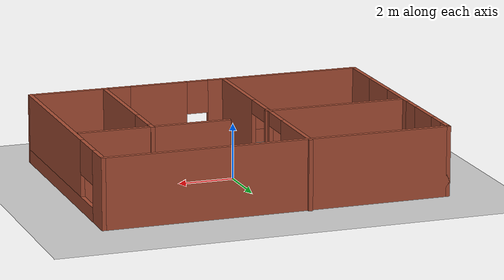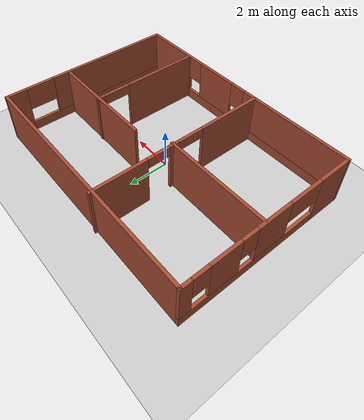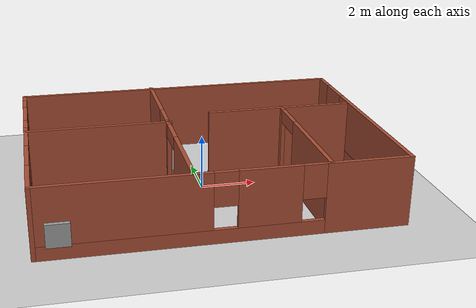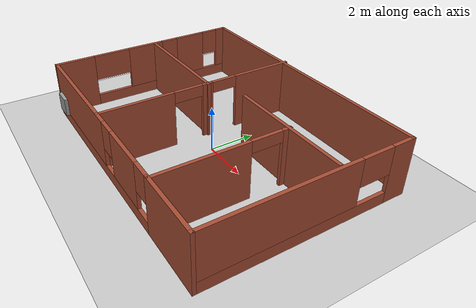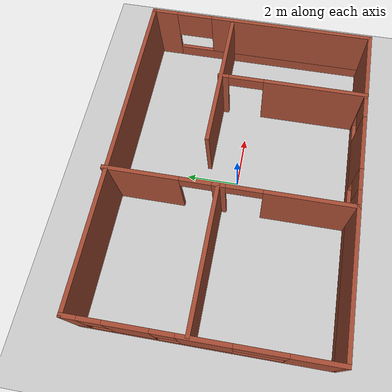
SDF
<sdf version="1.7">
 <world name="default">
  <light name="sun" type="directional">
   <pose>0 0 10 0 -0 0</pose>
   <diffuse>0.8 0.8 0.8 1</diffuse>
   <specular>0.2 0.2 0.2 1</specular>
   <attenuation>
    <range>1000</range>
    <constant>0.9</constant>
    <linear>0.01</linear>
    <quadratic>0.001</quadratic>
   </attenuation>
   <direction>-0.5 0.1 -0.9</direction>
   <spot><inner_angle>0</inner_angle><outer_angle>0</outer_angle><falloff>0</falloff></spot>
  </light>
  <model name="ground_plane">
   <static>1</static>
   <link name="link">
    <collision name="collision">
     <geometry><plane><normal>0 0 1</normal><size>100 100</size></plane></geometry>
     <surface>
      <contact><collide_bitmask>65535</collide_bitmask></contact>
      <friction><ode><mu>100</mu><mu2>50</mu2></ode></friction>
     </surface>
    </collision>
    <visual name="visual">
     <cast_shadows>0</cast_shadows>
     <geometry><plane><normal>0 0 1</normal><size>100 100</size></plane></geometry>
     <material>
      <script><uri>file://media/materials/scripts/gazebo.material</uri><name>Gazebo/Grey</name></script>
     </material>
    </visual>
   </link>
  </model>
  <gravity>0 0 -9.8</gravity>
  <magnetic_field>6e-06 2.3e-05 -4.2e-05</magnetic_field>
  <atmosphere type="adiabatic"/>
  <physics type="ode">
   <max_step_size>0.001</max_step_size>
   <real_time_factor>1</real_time_factor>
   <real_time_update_rate>1000</real_time_update_rate>
  </physics>
  <scene><ambient>0.4 0.4 0.4 1</ambient><background>0.7 0.7 0.7 1</background><shadows>1</shadows></scene>
  <spherical_coordinates>
   <surface_model>EARTH_WGS84</surface_model>
   <latitude_deg>0</latitude_deg>
   <longitude_deg>0</longitude_deg>
   <elevation>0</elevation>
   <heading_deg>0</heading_deg>
  </spherical_coordinates>
  <model name="map3">
   <pose>-0.06864 0.109458 0 0 -0 0</pose>
   <link name="Wall_0">
    <collision name="Wall_0_Collision">
     <geometry><box><size>12.5 0.15 2.5</size></box></geometry>
     <pose>0 0 1.25 0 -0 0</pose>
    </collision>
    <visual name="Wall_0_Visual">
     <pose>0 0 1.25 0 -0 0</pose>
     <geometry><box><size>12.5 0.15 2.5</size></box></geometry>
     <material>
      <script><uri>file://media/materials/scripts/gazebo.material</uri><name>Gazebo/Bricks</name></script>
      <ambient>1 1 1 1</ambient>
     </material>
     <meta><layer>0</layer></meta>
    </visual>
    <pose>0 4.37199 0 0 -0 0</pose>
   </link>
   <link name="Wall_1">
    <pose>6.175 -0.053007 0 0 -0 -1.5708</pose>
    <visual name="Wall_1_Visual_0">
     <pose>-3.9741 0 1.25 0 -0 0</pose>
     <geometry><box><size>1.05181 0.15 2.5</size></box></geometry>
     <material>
      <script><uri>file://media/materials/scripts/gazebo.material</uri><name>Gazebo/Bricks</name></script>
      <ambient>1 1 1 1</ambient>
     </material>
     <meta><layer>0</layer></meta>
    </visual>
    <collision name="Wall_1_Collision_0">
     <geometry><box><size>1.05181 0.15 2.5</size></box></geometry>
     <pose>-3.9741 0 1.25 0 -0 0</pose>
    </collision>
    <visual name="Wall_1_Visual_1">
     <pose>0.525905 0 0.25 0 -0 0</pose>
     <geometry><box><size>7.94819 0.15 0.5</size></box></geometry>
     <material>
      <script><uri>file://media/materials/scripts/gazebo.material</uri><name>Gazebo/Bricks</name></script>
      <ambient>1 1 1 1</ambient>
     </material>
     <meta><layer>0</layer></meta>
    </visual>
    <collision name="Wall_1_Collision_1">
     <geometry><box><size>7.94819 0.15 0.5</size></box></geometry>
     <pose>0.525905 0 0.25 0 -0 0</pose>
    </collision>
    <visual name="Wall_1_Visual_2">
     <pose>1.23767 0 1.5 0 -0 0</pose>
     <geometry><box><size>6.52467 0.15 2</size></box></geometry>
     <material>
      <script><uri>file://media/materials/scripts/gazebo.material</uri><name>Gazebo/Bricks</name></script>
      <ambient>1 1 1 1</ambient>
     </material>
     <meta><layer>0</layer></meta>
    </visual>
    <collision name="Wall_1_Collision_2">
     <geometry><box><size>6.52467 0.15 2</size></box></geometry>
     <pose>1.23767 0 1.5 0 -0 0</pose>
    </collision>
    <visual name="Wall_1_Visual_3">
     <pose>-2.73643 0 1.9 0 -0 0</pose>
     <geometry><box><size>1.42352 0.15 1.2</size></box></geometry>
     <material>
      <script><uri>file://media/materials/scripts/gazebo.material</uri><name>Gazebo/Bricks</name></script>
      <ambient>1 1 1 1</ambient>
     </material>
     <meta><layer>0</layer></meta>
    </visual>
    <collision name="Wall_1_Collision_3">
     <geometry><box><size>1.42352 0.15 1.2</size></box></geometry>
     <pose>-2.73643 0 1.9 0 -0 0</pose>
    </collision>
   </link>
   <link name="Wall_12">
    <pose>3.42635 -1.66231 0 0 -0 1.5708</pose>
    <visual name="Wall_12_Visual_0">
     <pose>-0.891884 0 1.25 0 -0 0</pose>
     <geometry><box><size>3.96623 0.15 2.5</size></box></geometry>
     <material>
      <script><uri>file://media/materials/scripts/gazebo.material</uri><name>Gazebo/Bricks</name></script>
      <ambient>1 1 1 1</ambient>
     </material>
     <meta><layer>0</layer></meta>
    </visual>
    <collision name="Wall_12_Collision_0">
     <geometry><box><size>3.96623 0.15 2.5</size></box></geometry>
     <pose>-0.891884 0 1.25 0 -0 0</pose>
    </collision>
    <visual name="Wall_12_Visual_1">
     <pose>2.66442 0 1.25 0 -0 0</pose>
     <geometry><box><size>0.421157 0.15 2.5</size></box></geometry>
     <material>
      <script><uri>file://media/materials/scripts/gazebo.material</uri><name>Gazebo/Bricks</name></script>
      <ambient>1 1 1 1</ambient>
     </material>
     <meta><layer>0</layer></meta>
    </visual>
    <collision name="Wall_12_Collision_1">
     <geometry><box><size>0.421157 0.15 2.5</size></box></geometry>
     <pose>2.66442 0 1.25 0 -0 0</pose>
    </collision>
    <visual name="Wall_12_Visual_2">
     <pose>1.77254 0 2.25 0 -0 0</pose>
     <geometry><box><size>1.36261 0.15 0.5</size></box></geometry>
     <material>
      <script><uri>file://media/materials/scripts/gazebo.material</uri><name>Gazebo/Bricks</name></script>
      <ambient>1 1 1 1</ambient>
     </material>
     <meta><layer>0</layer></meta>
    </visual>
    <collision name="Wall_12_Collision_2">
     <geometry><box><size>1.36261 0.15 0.5</size></box></geometry>
     <pose>1.77254 0 2.25 0 -0 0</pose>
    </collision>
   </link>
   <link name="Wall_14">
    <pose>-1.0966 -2.04721 0 0 -0 -1.5708</pose>
    <visual name="Wall_14_Visual_0">
     <pose>-2.33289 0 1.25 0 -0 0</pose>
     <geometry><box><size>0.334216 0.15 2.5</size></box></geometry>
     <material>
      <script><uri>file://media/materials/scripts/gazebo.material</uri><name>Gazebo/Bricks</name></script>
      <ambient>1 1 1 1</ambient>
     </material>
     <meta><layer>0</layer></meta>
    </visual>
    <collision name="Wall_14_Collision_0">
     <geometry><box><size>0.334216 0.15 2.5</size></box></geometry>
     <pose>-2.33289 0 1.25 0 -0 0</pose>
    </collision>
    <visual name="Wall_14_Visual_1">
     <pose>0.8283 0 1.25 0 -0 0</pose>
     <geometry><box><size>3.3434 0.15 2.5</size></box></geometry>
     <material>
      <script><uri>file://media/materials/scripts/gazebo.material</uri><name>Gazebo/Bricks</name></script>
      <ambient>1 1 1 1</ambient>
     </material>
     <meta><layer>0</layer></meta>
    </visual>
    <collision name="Wall_14_Collision_1">
     <geometry><box><size>3.3434 0.15 2.5</size></box></geometry>
     <pose>0.8283 0 1.25 0 -0 0</pose>
    </collision>
    <visual name="Wall_14_Visual_2">
     <pose>-1.50459 0 2.25 0 -0 0</pose>
     <geometry><box><size>1.32238 0.15 0.5</size></box></geometry>
     <material>
      <script><uri>file://media/materials/scripts/gazebo.material</uri><name>Gazebo/Bricks</name></script>
      <ambient>1 1 1 1</ambient>
     </material>
     <meta><layer>0</layer></meta>
    </visual>
    <collision name="Wall_14_Collision_2">
     <geometry><box><size>1.32238 0.15 0.5</size></box></geometry>
     <pose>-1.50459 0 2.25 0 -0 0</pose>
    </collision>
   </link>
   <link name="Wall_2">
    <pose>0 -4.47801 0 0 -0 3.14159</pose>
    <visual name="Wall_2_Visual_0">
     <pose>-4.76045 0 1.25 0 -0 0</pose>
     <geometry><box><size>2.9791 0.15 2.5</size></box></geometry>
     <material>
      <script><uri>file://media/materials/scripts/gazebo.material</uri><name>Gazebo/Bricks</name></script>
      <ambient>1 1 1 1</ambient>
     </material>
     <meta><layer>0</layer></meta>
    </visual>
    <collision name="Wall_2_Collision_0">
     <geometry><box><size>2.9791 0.15 2.5</size></box></geometry>
     <pose>-4.76045 0 1.25 0 -0 0</pose>
    </collision>
    <visual name="Wall_2_Visual_1">
     <pose>1.48955 0 0.25 0 -0 0</pose>
     <geometry><box><size>9.5209 0.15 0.5</size></box></geometry>
     <material>
      <script><uri>file://media/materials/scripts/gazebo.material</uri><name>Gazebo/Bricks</name></script>
      <ambient>1 1 1 1</ambient>
     </material>
     <meta><layer>0</layer></meta>
    </visual>
    <collision name="Wall_2_Collision_1">
     <geometry><box><size>9.5209 0.15 0.5</size></box></geometry>
     <pose>1.48955 0 0.25 0 -0 0</pose>
    </collision>
    <visual name="Wall_2_Visual_2">
     <pose>-1.40292 0 1.5 0 -0 0</pose>
     <geometry><box><size>2.13595 0.15 2</size></box></geometry>
     <material>
      <script><uri>file://media/materials/scripts/gazebo.material</uri><name>Gazebo/Bricks</name></script>
      <ambient>1 1 1 1</ambient>
     </material>
     <meta><layer>0</layer></meta>
    </visual>
    <collision name="Wall_2_Collision_2">
     <geometry><box><size>2.13595 0.15 2</size></box></geometry>
     <pose>-1.40292 0 1.5 0 -0 0</pose>
    </collision>
    <visual name="Wall_2_Visual_3">
     <pose>3.35752 0 1.5 0 -0 0</pose>
     <geometry><box><size>5.78495 0.15 2</size></box></geometry>
     <material>
      <script><uri>file://media/materials/scripts/gazebo.material</uri><name>Gazebo/Bricks</name></script>
      <ambient>1 1 1 1</ambient>
     </material>
     <meta><layer>0</layer></meta>
    </visual>
    <collision name="Wall_2_Collision_3">
     <geometry><box><size>5.78495 0.15 2</size></box></geometry>
     <pose>3.35752 0 1.5 0 -0 0</pose>
    </collision>
    <visual name="Wall_2_Visual_4">
     <pose>-2.8709 0 1.9 0 -0 0</pose>
     <geometry><box><size>0.8 0.15 1.2</size></box></geometry>
     <material>
      <script><uri>file://media/materials/scripts/gazebo.material</uri><name>Gazebo/Bricks</name></script>
      <ambient>1 1 1 1</ambient>
     </material>
     <meta><layer>0</layer></meta>
    </visual>
    <collision name="Wall_2_Collision_4">
     <geometry><box><size>0.8 0.15 1.2</size></box></geometry>
     <pose>-2.8709 0 1.9 0 -0 0</pose>
    </collision>
    <visual name="Wall_2_Visual_5">
     <pose>0.06505 0 1.9 0 -0 0</pose>
     <geometry><box><size>0.8 0.15 1.2</size></box></geometry>
     <material>
      <script><uri>file://media/materials/scripts/gazebo.material</uri><name>Gazebo/Bricks</name></script>
      <ambient>1 1 1 1</ambient>
     </material>
     <meta><layer>0</layer></meta>
    </visual>
    <collision name="Wall_2_Collision_5">
     <geometry><box><size>0.8 0.15 1.2</size></box></geometry>
     <pose>0.06505 0 1.9 0 -0 0</pose>
    </collision>
   </link>
   <link name="Wall_3">
    <pose>-6.175 -0.053007 0 0 -0 1.5708</pose>
    <visual name="Wall_3_Visual_0">
     <pose>-3.59095 0 1.25 0 -0 0</pose>
     <geometry><box><size>1.81809 0.15 2.5</size></box></geometry>
     <material>
      <script><uri>file://media/materials/scripts/gazebo.material</uri><name>Gazebo/Bricks</name></script>
      <ambient>1 1 1 1</ambient>
     </material>
     <meta><layer>0</layer></meta>
    </visual>
    <collision name="Wall_3_Collision_0">
     <geometry><box><size>1.81809 0.15 2.5</size></box></geometry>
     <pose>-3.59095 0 1.25 0 -0 0</pose>
    </collision>
    <visual name="Wall_3_Visual_1">
     <pose>0.909046 0 0.25 0 -0 0</pose>
     <geometry><box><size>7.18191 0.15 0.5</size></box></geometry>
     <material>
      <script><uri>file://media/materials/scripts/gazebo.material</uri><name>Gazebo/Bricks</name></script>
      <ambient>1 1 1 1</ambient>
     </material>
     <meta><layer>0</layer></meta>
    </visual>
    <collision name="Wall_3_Collision_1">
     <geometry><box><size>7.18191 0.15 0.5</size></box></geometry>
     <pose>0.909046 0 0.25 0 -0 0</pose>
    </collision>
    <visual name="Wall_3_Visual_2">
     <pose>-0.066066 0 1.5 0 -0 0</pose>
     <geometry><box><size>1.78123 0.15 2</size></box></geometry>
     <material>
      <script><uri>file://media/materials/scripts/gazebo.material</uri><name>Gazebo/Bricks</name></script>
      <ambient>1 1 1 1</ambient>
     </material>
     <meta><layer>0</layer></meta>
    </visual>
    <collision name="Wall_3_Collision_2">
     <geometry><box><size>1.78123 0.15 2</size></box></geometry>
     <pose>-0.066066 0 1.5 0 -0 0</pose>
    </collision>
    <visual name="Wall_3_Visual_3">
     <pose>2.37513 0 1.5 0 -0 0</pose>
     <geometry><box><size>1.50115 0.15 2</size></box></geometry>
     <material>
      <script><uri>file://media/materials/scripts/gazebo.material</uri><name>Gazebo/Bricks</name></script>
      <ambient>1 1 1 1</ambient>
     </material>
     <meta><layer>0</layer></meta>
    </visual>
    <collision name="Wall_3_Collision_3">
     <geometry><box><size>1.50115 0.15 2</size></box></geometry>
     <pose>2.37513 0 1.5 0 -0 0</pose>
    </collision>
    <visual name="Wall_3_Visual_4">
     <pose>4.21285 0 1.5 0 -0 0</pose>
     <geometry><box><size>0.5743 0.15 2</size></box></geometry>
     <material>
      <script><uri>file://media/materials/scripts/gazebo.material</uri><name>Gazebo/Bricks</name></script>
      <ambient>1 1 1 1</ambient>
     </material>
     <meta><layer>0</layer></meta>
    </visual>
    <collision name="Wall_3_Collision_4">
     <geometry><box><size>0.5743 0.15 2</size></box></geometry>
     <pose>4.21285 0 1.5 0 -0 0</pose>
    </collision>
    <visual name="Wall_3_Visual_5">
     <pose>-1.8193 0 1.9 0 -0 0</pose>
     <geometry><box><size>1.72522 0.15 1.2</size></box></geometry>
     <material>
      <script><uri>file://media/materials/scripts/gazebo.material</uri><name>Gazebo/Bricks</name></script>
      <ambient>1 1 1 1</ambient>
     </material>
     <meta><layer>0</layer></meta>
    </visual>
    <collision name="Wall_3_Collision_5">
     <geometry><box><size>1.72522 0.15 1.2</size></box></geometry>
     <pose>-1.8193 0 1.9 0 -0 0</pose>
    </collision>
    <visual name="Wall_3_Visual_6">
     <pose>1.22455 0 1.9 0 -0 0</pose>
     <geometry><box><size>0.8 0.15 1.2</size></box></geometry>
     <material>
      <script><uri>file://media/materials/scripts/gazebo.material</uri><name>Gazebo/Bricks</name></script>
      <ambient>1 1 1 1</ambient>
     </material>
     <meta><layer>0</layer></meta>
    </visual>
    <collision name="Wall_3_Collision_6">
     <geometry><box><size>0.8 0.15 1.2</size></box></geometry>
     <pose>1.22455 0 1.9 0 -0 0</pose>
    </collision>
    <visual name="Wall_3_Visual_7">
     <pose>3.5257 0 1.9 0 -0 0</pose>
     <geometry><box><size>0.8 0.15 1.2</size></box></geometry>
     <material>
      <script><uri>file://media/materials/scripts/gazebo.material</uri><name>Gazebo/Bricks</name></script>
      <ambient>1 1 1 1</ambient>
     </material>
     <meta><layer>0</layer></meta>
    </visual>
    <collision name="Wall_3_Collision_7">
     <geometry><box><size>0.8 0.15 1.2</size></box></geometry>
     <pose>3.5257 0 1.9 0 -0 0</pose>
    </collision>
   </link>
   <link name="Wall_5">
    <collision name="Wall_5_Collision">
     <geometry><box><size>5.25 0.15 2.5</size></box></geometry>
     <pose>0 0 1.25 0 -0 0</pose>
    </collision>
    <visual name="Wall_5_Visual">
     <pose>0 0 1.25 0 -0 0</pose>
     <geometry><box><size>5.25 0.15 2.5</size></box></geometry>
     <material>
      <script><uri>file://media/materials/scripts/gazebo.material</uri><name>Gazebo/Bricks</name></script>
      <ambient>1 1 1 1</ambient>
     </material>
     <meta><layer>0</layer></meta>
    </visual>
    <pose>-3.5721 0.378043 0 0 -0 0</pose>
   </link>
   <link name="Wall_7">
    <pose>-1.0966 2.42779 0 0 -0 -1.5708</pose>
    <visual name="Wall_7_Visual_0">
     <pose>-0.729123 0 1.25 0 -0 0</pose>
     <geometry><box><size>2.79218 0.15 2.5</size></box></geometry>
     <material>
      <script><uri>file://media/materials/scripts/gazebo.material</uri><name>Gazebo/Bricks</name></script>
      <ambient>1 1 1 1</ambient>
     </material>
     <meta><layer>0</layer></meta>
    </visual>
    <collision name="Wall_7_Collision_0">
     <geometry><box><size>2.79218 0.15 2.5</size></box></geometry>
     <pose>-0.729123 0 1.25 0 -0 0</pose>
    </collision>
    <visual name="Wall_7_Visual_1">
     <pose>1.97683 0 1.25 0 -0 0</pose>
     <geometry><box><size>0.29677 0.15 2.5</size></box></geometry>
     <material>
      <script><uri>file://media/materials/scripts/gazebo.material</uri><name>Gazebo/Bricks</name></script>
      <ambient>1 1 1 1</ambient>
     </material>
     <meta><layer>0</layer></meta>
    </visual>
    <collision name="Wall_7_Collision_1">
     <geometry><box><size>0.29677 0.15 2.5</size></box></geometry>
     <pose>1.97683 0 1.25 0 -0 0</pose>
    </collision>
    <visual name="Wall_7_Visual_2">
     <pose>1.24771 0 2.25 0 -0 0</pose>
     <geometry><box><size>1.16148 0.15 0.5</size></box></geometry>
     <material>
      <script><uri>file://media/materials/scripts/gazebo.material</uri><name>Gazebo/Bricks</name></script>
      <ambient>1 1 1 1</ambient>
     </material>
     <meta><layer>0</layer></meta>
    </visual>
    <collision name="Wall_7_Collision_2">
     <geometry><box><size>1.16148 0.15 0.5</size></box></geometry>
     <pose>1.24771 0 2.25 0 -0 0</pose>
    </collision>
   </link>
   <link name="Wall_9">
    <collision name="Wall_9_Collision">
     <geometry><box><size>5.5 0.15 2.5</size></box></geometry>
     <pose>0 0 1.25 0 -0 0</pose>
    </collision>
    <visual name="Wall_9_Visual">
     <pose>0 0 1.25 0 -0 0</pose>
     <geometry><box><size>5.5 0.15 2.5</size></box></geometry>
     <material>
      <script><uri>file://media/materials/scripts/gazebo.material</uri><name>Gazebo/Bricks</name></script>
      <ambient>1 1 1 1</ambient>
     </material>
     <meta><layer>0</layer></meta>
    </visual>
    <pose>3.3241 1.09219 0 0 -0 0</pose>
   </link>
   <link name="Window_2">
    <collision name="Window_2_Collision">
     <geometry><box><size>0.8 0.17 0.8</size></box></geometry>
     <pose>0 0 0.4 0 -0 0</pose>
    </collision>
    <visual name="Window_2_Visual">
     <pose>0 0 0.4 0 -0 0</pose>
     <geometry><box><size>0.8 0.17 0.8</size></box></geometry>
     <material>
      <script><uri>file://media/materials/scripts/gazebo.material</uri><name>Gazebo/Grey</name></script>
     </material>
    </visual>
    <pose>-5.3815 -4.62101 0.5 0 -0 0</pose>
   </link>
   <static>1</static>
  </model>
 </world>
</sdf>
